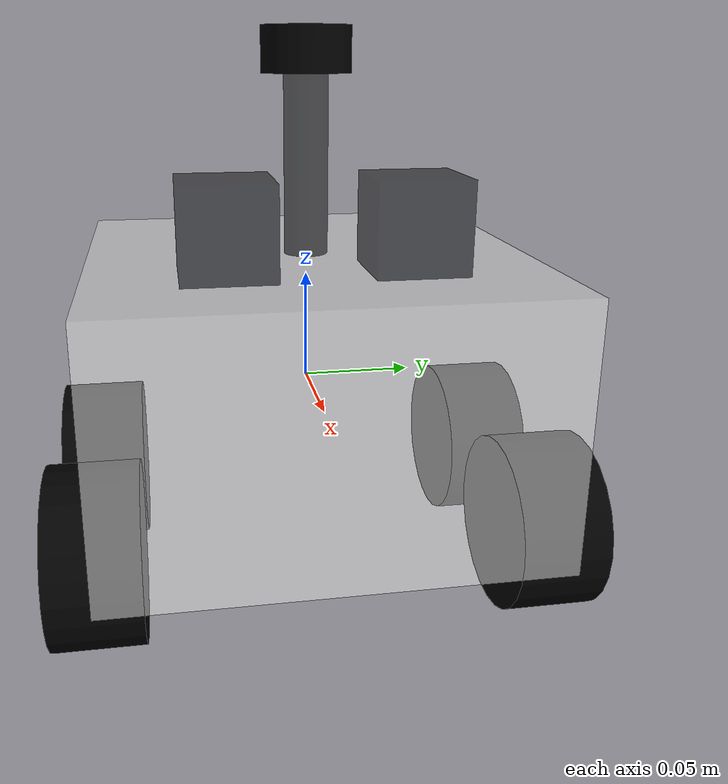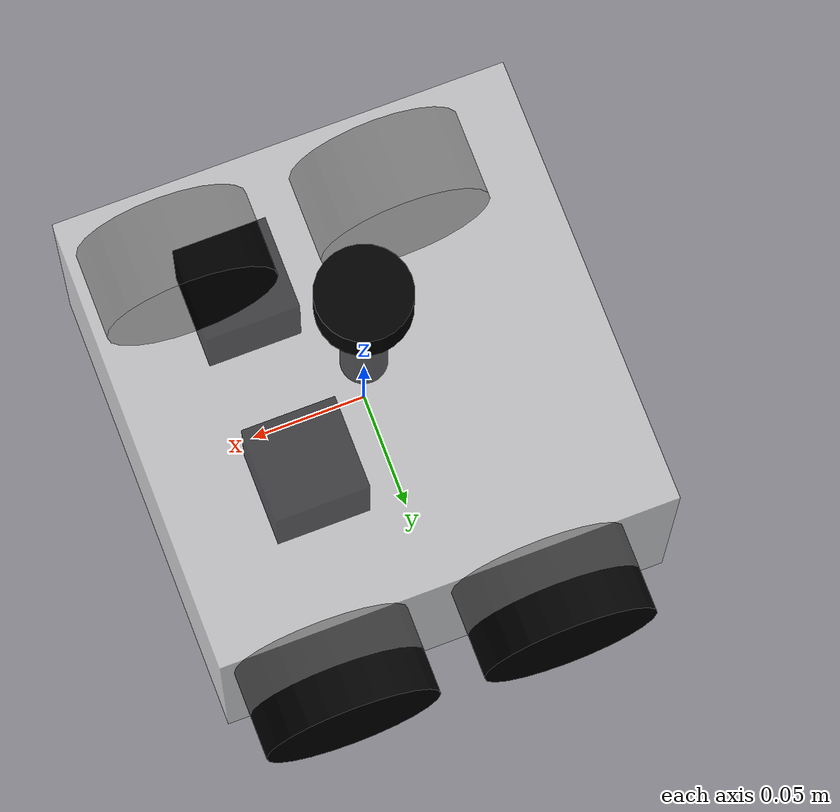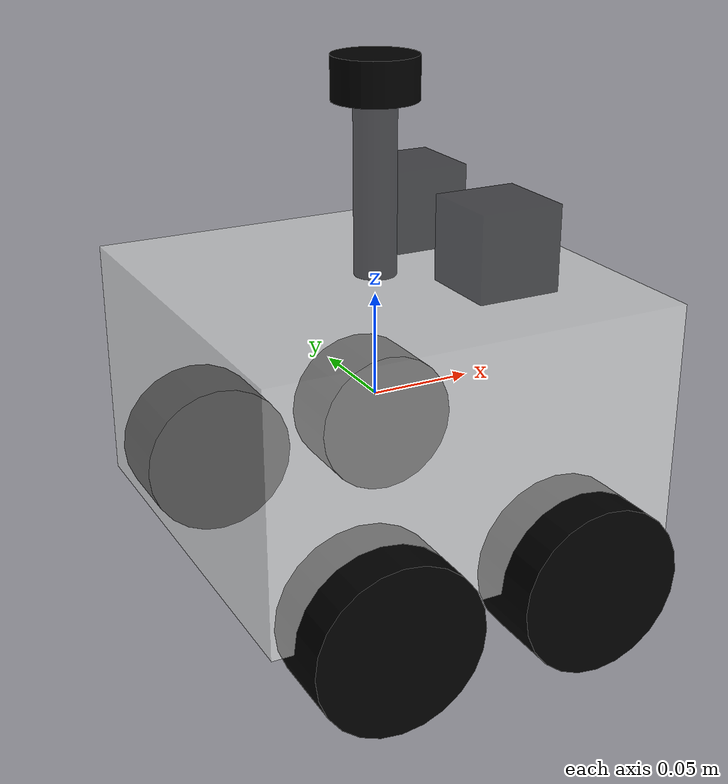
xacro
<?xml version="1.0"?>
<robot xmlns:xacro="http://www.ros.org/wiki/xacro" name="third_robot">
  <xacro:include filename="$(find cpp_demo)/urdf/third_robot/base.urdf.xacro"/>
  <xacro:include filename="$(find cpp_demo)/urdf/third_robot/camera.urdf.xacro"/>
  <xacro:include filename="$(find cpp_demo)/urdf/third_robot/laser.urdf.xacro"/>
  <xacro:include filename="$(find cpp_demo)/urdf/third_robot/wheel.urdf.xacro"/>
  <xacro:include filename="$(find cpp_demo)/urdf/diff_drive_plugin.xacro"/>
  <xacro:include filename="$(find cpp_demo)/urdf/laser_plugin.xacro"/>

  <!-- 底盘 0.2(x) 0.2(y) 0.12(z) -->
  <xacro:base_link xyz="0.2 0.2 0.12"/>

  <xacro:camera_link camera_name="camera01" xyz="0.04 -0.04 0.08"/>
  <xacro:camera_link camera_name="camera02" xyz="0.04 0.04 0.08"/>
  <xacro:laser_link xyz="0.0 0.0 0.05"/>

  <!-- 驱动轮 -->
  <xacro:drive_wheel wheel_name="wheel01" xyz="0.05 0.1 -0.06"/>
  <xacro:drive_wheel wheel_name="wheel02" xyz="0.05 -0.1 -0.06"/>
  <!-- 随动轮 -->
  <xacro:passive_wheel wheel_name="wheel03" xyz="-0.05 0.1 -0.06"/>
  <xacro:passive_wheel wheel_name="wheel04" xyz="-0.05 -0.1 -0.06"/>

  <!-- 加载差速插件 -->
  <xacro:diff_drive_plugin/>
  <xacro:laser_plugin/>
</robot>

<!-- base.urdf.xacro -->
<robot xmlns:xacro="http://www.ros.org/wiki/xacro">
<xacro:include filename="$(find cpp_demo)/urdf/inertial.xacro"/>
    <xacro:macro name="base_link" params="xyz">

        <link name="base_shadow">

        </link>
        <link name="base_link">
            <visual>
                <origin xyz="0.0 0.0 0.0" rpy="0.0 0.0 0.0"/>
                <geometry>
                    <box size="${xyz}"/>
                </geometry>
                <material name="white">
                    <color rgba="1.0 1.0 1.0 0.5"/>
                </material>
            </visual>

            <collision>
            <origin xyz="0.0 0.0 0.0" rpy="0.0 0.0 0.0"/>
                <geometry>
                    <box size="${xyz}"/>
                </geometry>
                <material name="white">
                    <color rgba="1.0 1.0 1.0 0.5"/>
                </material>
            </collision>

            <xacro:box_inertia m="1.0" w="0.2" h="0.2" d="0.12"/>
        </link>

        <joint name="base_joint" type="fixed">
            <parent link="base_link"/>
            <child link="base_shadow"/>
            <origin xyz="0.0 0.0 -0.095" rpy="0.0 0.0 0.0"/>
        </joint>
    </xacro:macro>
</robot>

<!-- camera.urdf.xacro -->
<robot xmlns:xacro="http://www.ros.org/wiki/xacro">
<xacro:include filename="$(find cpp_demo)/urdf/inertial.xacro"/>
    <xacro:macro name="camera_link" params="camera_name xyz">
        <link name="${camera_name}_link">
            <visual>
                <origin xyz="0.0 0.0 0.0" rpy="0.0 0.0 0.0"/>
                <geometry>
                    <box size="0.04 0.04 0.04"/>
                </geometry>
                <material name="black">
                    <color rgba="0.0 0.0 0.0 0.5"/>
                </material>
            </visual>

            <collision>
                <origin xyz="0.0 0.0 0.0" rpy="0.0 0.0 0.0"/>
                    <geometry>
                        <box size="0.04 0.04 0.04"/>
                    </geometry>
                    <material name="black">
                        <color rgba="0.0 0.0 0.0 0.5"/>
                    </material>
            </collision>

            <xacro:box_inertia m="0.5" w="0.04" d="0.04" h="0.04" />
        </link>

        <joint name="${camera_name}_joint" type="fixed">
            <parent link="base_link"/>
            <child link="${camera_name}_link"/>
            <origin xyz="${xyz}" rpy="0.0 0.0 0.0"/>
        </joint>
    </xacro:macro>
</robot>

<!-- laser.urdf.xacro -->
<robot xmlns:xacro="http://www.ros.org/wiki/xacro">
<xacro:include filename="$(find cpp_demo)/urdf/inertial.xacro"/>
    <xacro:macro name="laser_link" params="xyz">
        <link name="laser_link">
            <visual>
                <origin xyz="${xyz}" rpy="0.0 0.0 0.0"/>
                <geometry>
                    <cylinder radius="0.01" length="0.10"/>
                </geometry>
                <material name="black">
                    <color rgba="0.0 0.0 0.0 0.5"/>
                </material>
            </visual>

            <collision>
                <origin xyz="${xyz}" rpy="0.0 0.0 0.0"/>
                <geometry>
                    <cylinder radius="0.01" length="0.10"/>
                </geometry>
                <material name="black">
                    <color rgba="0.0 0.0 0.0 0.5"/>
                </material>
            </collision>

            <xacro:cylinder_inertia m="0.5" r="0.01" h="0.10" />
        </link>

        <link name="laser">
            <visual>
                <origin xyz="${xyz}" rpy="0.0 0.0 0.0"/>
                <geometry>
                    <cylinder radius="0.02" length="0.02"/>
                </geometry>
                <material name="black">
                    <color rgba="0.0 0.0 0.0 1.0"/>
                </material>
            </visual>

            <collision>
                <origin xyz="${xyz}" rpy="0.0 0.0 0.0"/>
                <geometry>
                    <cylinder radius="0.02" length="0.02"/>
                </geometry>
                <material name="black">
                    <color rgba="0.0 0.0 0.0 1.0"/>
                </material>
            </collision>

            <xacro:cylinder_inertia m="0.5" r="0.02" h="0.02" />
        </link>

        <joint name="laser_joint" type="fixed">
            <parent link="laser_link"/>
            <child link="laser"/>
            <origin xyz="0.0 0.0 0.05" rpy="0.0 0.0 0.0"/>
        </joint>

        <joint name="laser_link_joint" type="fixed">
            <parent link="base_link"/>
            <child link="laser_link"/>
            <origin xyz="0.0 0.0 0.05" rpy="0.0 0.0 0.0"/>
        </joint>
    </xacro:macro>
</robot>

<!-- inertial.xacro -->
<robot xmlns:xacro="shturl.cc/Yn84xgJTLkdXd9LshdU">
  <!-- 长方体惯性宏
      params: m质量(kg), w:x方向长度, h:y方向长度, d:z方向长度
      惯性中心在box几何中心
  -->
  <xacro:macro name="box_inertia" params="m w h d">
    <inertial>
      <mass value="${m}" />
      <inertia
        ixx="${(m/12) * (h*h + d*d)}"
        ixy="0.0"
        ixz="0.0"
        iyy="${(m/12) * (w*w + d*d)}"
        izz="${(m/12) * (w*w + h*h)}"
        iyz="0.0"/>
    </inertial>
  </xacro:macro>

  <!-- 圆柱体惯性宏
      params: m质量(kg), r半径, h圆柱体长度(轴线沿link的Z轴)
  -->
  <xacro:macro name="cylinder_inertia" params="m r h">
    <inertial>
      <mass value="${m}" />
      <inertia
        ixx="${(m/12) * (3*r*r + h*h)}"
        ixy="0.0"
        ixz="0.0"
        iyy="${(m/12) * (3*r*r + h*h)}"
        izz="${0.5 * m * r * r}"
        iyz="0.0"/>
    </inertial>
  </xacro:macro>

  <!-- 实心球体惯性宏
      params: m质量(kg), r球半径
  -->
  <xacro:macro name="sphere_inertia" params="m r">
    <inertial>
      <mass value="${m}" />
      <inertia
        ixx="${(2/5) * m * r * r}"
        ixy="0.0"
        ixz="0.0"
        iyy="${(2/5) * m * r * r}"
        izz="${(2/5) * m * r * r}"
        iyz="0.0"/>
    </inertial>
  </xacro:macro>

</robot>

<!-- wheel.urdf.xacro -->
<robot xmlns:xacro="http://www.ros.org/wiki/xacro">
  <!-- 轮子专用圆柱惯性宏（勿与 inertial.xacro 里的 cylinder_inertia 重名）-->
  <!-- 圆柱几何轴沿Y（visual/collision已旋转90°），关节axis=0 1 0，即绕Y旋转 -->
  <xacro:macro name="wheel_cylinder_inertia" params="m r h">
    <inertial>
      <mass value="${m}"/>
      <inertia
        ixx="${m*(3*r*r + h*h)/12}"
        ixy="0.0"
        ixz="0.0"
        iyy="${0.5*m*r*r}"
        izz="${m*(3*r*r + h*h)/12}"
        iyz="0.0"
      />
    </inertial>
  </xacro:macro>

  <!-- 驱动轮：revolute 差速控制，摩擦大保证抓地 -->
  <xacro:macro name="drive_wheel" params="wheel_name xyz">
    <link name="${wheel_name}_link">
      <visual>
        <origin xyz="0.0 0.0 0.0" rpy="1.5708 0.0 0.0"/>
        <geometry>
          <cylinder length="0.04" radius="0.04"/>
        </geometry>
        <material name="black">
          <color rgba="0.0 0.0 0.0 1.0"/>
        </material>
      </visual>
      <collision>
        <origin xyz="0.0 0.0 0.0" rpy="1.5708 0.0 0.0"/>
        <geometry>
          <cylinder length="0.04" radius="0.04"/>
        </geometry>
      </collision>
      <xacro:wheel_cylinder_inertia m="0.5" r="0.04" h="0.04" />
    </link>
    <!-- continuous：轮子必须用连续旋转。revolute不写lower/upper默认0~0，轮子会被锁死 -->
    <joint name="${wheel_name}_joint" type="continuous">
      <parent link="base_link"/>
      <child link="${wheel_name}_link"/>
      <origin xyz="${xyz}" rpy="0.0 0.0 0.0"/>
      <!-- 圆柱轴沿Y，必须显式指定转轴；正向速度=前进(+X) -->
      <axis xyz="0 1 0"/>
      <limit effort="20.0" velocity="10.0"/>
    </joint>
    <gazebo reference="${wheel_name}_link">
      <mu1>1.0</mu1>
      <mu2>1.0</mu2>
    </gazebo>
  </xacro:macro>

  <!-- 随动轮：自由旋转revolute，effort=0无驱动力 -->
  <!-- 摩擦调低：4轮均为平行Y轴轮，转向靠横向打滑，摩擦太大会转不动 -->
  <xacro:macro name="passive_wheel" params="wheel_name xyz">
    <link name="${wheel_name}_link">
      <visual>
        <origin xyz="0.0 0.0 0.0" rpy="1.5708 0.0 0.0"/>
        <geometry>
          <cylinder length="0.04" radius="0.04"/>
        </geometry>
        <material name="black">
          <color rgba="0.0 0.0 0.0 1.0"/>
        </material>
      </visual>
      <collision>
        <origin xyz="0.0 0.0 0.0" rpy="1.5708 0.0 0.0"/>
        <geometry>
          <cylinder length="0.04" radius="0.04"/>
        </geometry>
      </collision>
      <xacro:wheel_cylinder_inertia m="0.5" r="0.04" h="0.04" />
    </link>
    <joint name="${wheel_name}_joint" type="continuous">
      <parent link="base_link"/>
      <child link="${wheel_name}_link"/>
      <origin xyz="${xyz}" rpy="0.0 0.0 0.0"/>
      <axis xyz="0 1 0"/>
      <limit effort="0.0" velocity="10.0"/>
    </joint>
    <gazebo reference="${wheel_name}_link">
      <mu1>0.3</mu1>
      <mu2>0.3</mu2>
    </gazebo>
  </xacro:macro>
</robot>
